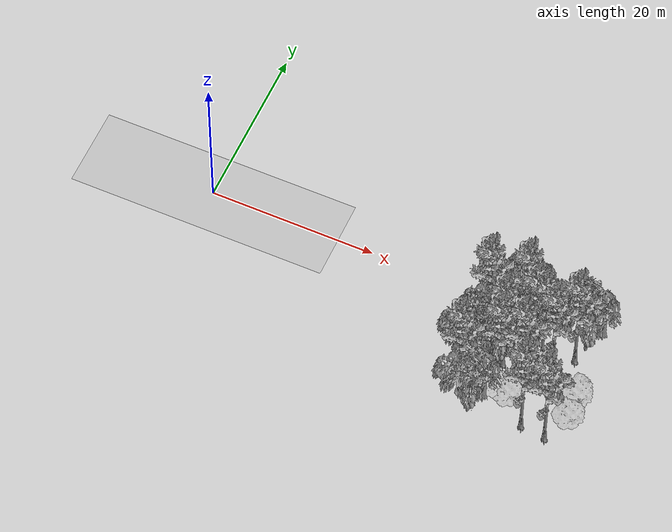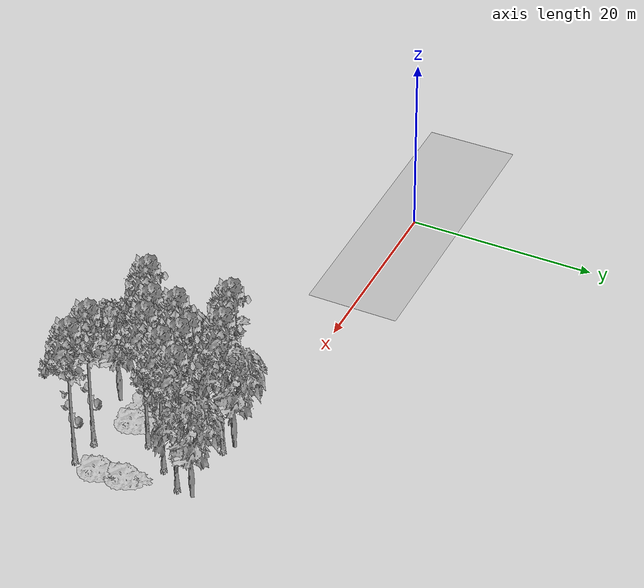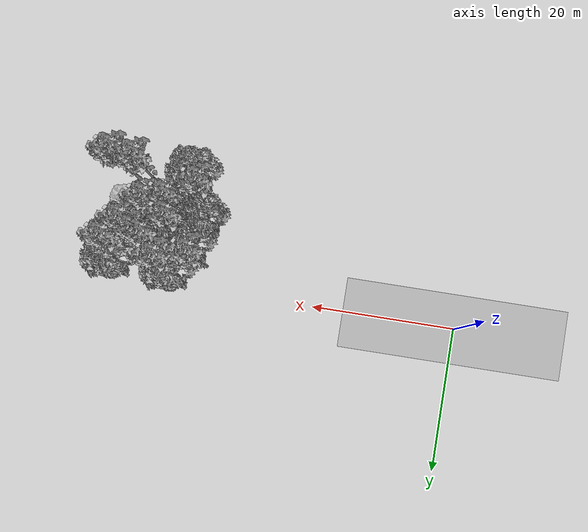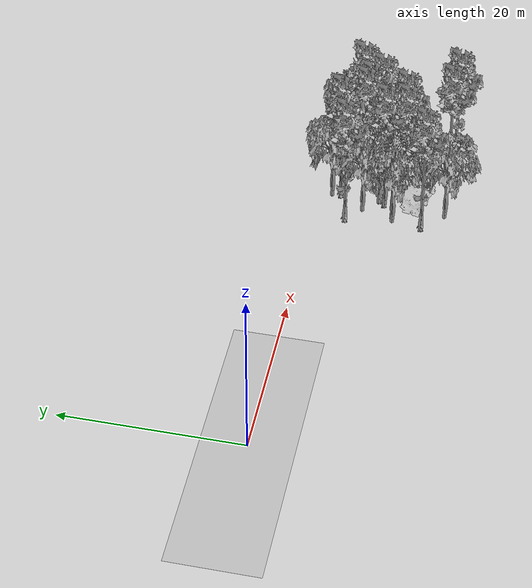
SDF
<sdf version="1.7">
 <world name="default">
  <model name="ground_plane">
   <static>1</static>
   <link name="link">
    <collision name="collision">
     <pose>-50 0 0 0 -0 0</pose>
     <geometry><plane><normal>0 0 1</normal><size>100 100</size></plane></geometry>
     <surface><contact><ode><min_depth>0.01</min_depth><max_vel>0</max_vel></ode></contact></surface>
    </collision>
    <visual name="grass">
     <cast_shadows>0</cast_shadows>
     <geometry>
      <mesh>
       <scale>0.5814285714285714 0.18142857142857144 0.1</scale>
       <uri>file://grass_plane/meshes/grass_plane.dae</uri>
      </mesh>
     </geometry>
    </visual>
   </link>
  </model>
  <model name="Tree 1">
   <static>1</static>
   <pose>39.66715383200335 -9.79743286991348 0 1.57079 -0 0</pose>
   <link name="link">
    <collision name="collision">
     <geometry><mesh><scale>3.5 5 3.5</scale><uri>model://tree_9/meshes/tree_9.obj</uri></mesh></geometry>
    </collision>
    <visual name="visual">
     <geometry><mesh><scale>3.5 5 3.5</scale><uri>model://tree_9/meshes/tree_9.obj</uri></mesh></geometry>
    </visual>
   </link>
  </model>
  <model name="Tree 4">
   <static>1</static>
   <pose>38.85485388677229 -6.85796119349353 0 1.57079 -0 0</pose>
   <link name="link">
    <collision name="collision">
     <geometry><mesh><scale>3.5 5 3.5</scale><uri>model://tree_2/meshes/tree_2.obj</uri></mesh></geometry>
    </collision>
    <visual name="visual">
     <geometry><mesh><scale>3.5 5 3.5</scale><uri>model://tree_2/meshes/tree_2.obj</uri></mesh></geometry>
    </visual>
   </link>
  </model>
  <model name="Tree 35">
   <static>1</static>
   <pose>38.48645120740305 -7.585648459738223 0 1.57079 -0 0</pose>
   <link name="link">
    <collision name="collision">
     <geometry><mesh><scale>3.5 5 3.5</scale><uri>model://tree_2/meshes/tree_2.obj</uri></mesh></geometry>
    </collision>
    <visual name="visual">
     <geometry><mesh><scale>3.5 5 3.5</scale><uri>model://tree_2/meshes/tree_2.obj</uri></mesh></geometry>
    </visual>
   </link>
  </model>
  <model name="Tree 44">
   <static>1</static>
   <pose>42.972990026830956 -5.106861504638861 0 1.57079 -0 0</pose>
   <link name="link">
    <collision name="collision">
     <geometry><mesh><scale>3.5 5 3.5</scale><uri>model://tree_9/meshes/tree_9.obj</uri></mesh></geometry>
    </collision>
    <visual name="visual">
     <geometry><mesh><scale>3.5 5 3.5</scale><uri>model://tree_9/meshes/tree_9.obj</uri></mesh></geometry>
    </visual>
   </link>
  </model>
  <model name="Tree 56">
   <static>1</static>
   <pose>36.0126616180943 -8.849073797612842 0 1.57079 -0 0</pose>
   <link name="link">
    <collision name="collision">
     <geometry><mesh><scale>3.5 5 3.5</scale><uri>model://tree_2/meshes/tree_2.obj</uri></mesh></geometry>
    </collision>
    <visual name="visual">
     <geometry><mesh><scale>3.5 5 3.5</scale><uri>model://tree_2/meshes/tree_2.obj</uri></mesh></geometry>
    </visual>
   </link>
  </model>
  <model name="Tree 75">
   <static>1</static>
   <pose>47.192818895071866 -14.372048634188662 0 1.57079 -0 0</pose>
   <link name="link">
    <collision name="collision">
     <geometry><mesh><scale>3.5 5 3.5</scale><uri>model://tree_9/meshes/tree_9.obj</uri></mesh></geometry>
    </collision>
    <visual name="visual">
     <geometry><mesh><scale>3.5 5 3.5</scale><uri>model://tree_9/meshes/tree_9.obj</uri></mesh></geometry>
    </visual>
   </link>
  </model>
  <model name="Tree 99">
   <static>1</static>
   <pose>41.24590839051818 -10.880660917098703 0 1.57079 -0 0</pose>
   <link name="link">
    <collision name="collision">
     <geometry><mesh><scale>4 2.5 4</scale><uri>model://tree_1/meshes/tree_1.obj</uri></mesh></geometry>
    </collision>
    <visual name="visual">
     <geometry><mesh><scale>4 2.5 4</scale><uri>model://tree_1/meshes/tree_1.obj</uri></mesh></geometry>
    </visual>
   </link>
  </model>
  <model name="Tree 104">
   <static>1</static>
   <pose>39.238473408387705 -7.4104846085706555 0 1.57079 -0 0</pose>
   <link name="link">
    <collision name="collision">
     <geometry><mesh><scale>3.5 5 3.5</scale><uri>model://tree_9/meshes/tree_9.obj</uri></mesh></geometry>
    </collision>
    <visual name="visual">
     <geometry><mesh><scale>3.5 5 3.5</scale><uri>model://tree_9/meshes/tree_9.obj</uri></mesh></geometry>
    </visual>
   </link>
  </model>
  <model name="Tree 115">
   <static>1</static>
   <pose>46.85511829235739 -1.874330395085467 0 1.57079 -0 0</pose>
   <link name="link">
    <collision name="collision">
     <geometry><mesh><scale>3.5 5 3.5</scale><uri>model://tree_2/meshes/tree_2.obj</uri></mesh></geometry>
    </collision>
    <visual name="visual">
     <geometry><mesh><scale>3.5 5 3.5</scale><uri>model://tree_2/meshes/tree_2.obj</uri></mesh></geometry>
    </visual>
   </link>
  </model>
  <model name="Tree 154">
   <static>1</static>
   <pose>37.20461155868452 -5.222956669100508 0 1.57079 -0 0</pose>
   <link name="link">
    <collision name="collision">
     <geometry><mesh><scale>3.5 5 3.5</scale><uri>model://tree_2/meshes/tree_2.obj</uri></mesh></geometry>
    </collision>
    <visual name="visual">
     <geometry><mesh><scale>3.5 5 3.5</scale><uri>model://tree_2/meshes/tree_2.obj</uri></mesh></geometry>
    </visual>
   </link>
  </model>
  <model name="Tree 166">
   <static>1</static>
   <pose>38.7679935107127 -11.118871377170267 0 1.57079 -0 0</pose>
   <link name="link">
    <collision name="collision">
     <geometry><mesh><scale>3 2 3</scale><uri>model://tree_3/meshes/tree_3.obj</uri></mesh></geometry>
    </collision>
    <visual name="visual">
     <geometry><mesh><scale>3 2 3</scale><uri>model://tree_3/meshes/tree_3.obj</uri></mesh></geometry>
    </visual>
   </link>
  </model>
  <model name="Tree 195">
   <static>1</static>
   <pose>48.49604986614102 -10.812340596375655 0 1.57079 -0 0</pose>
   <link name="link">
    <collision name="collision">
     <geometry><mesh><scale>4 2.5 4</scale><uri>model://tree_1/meshes/tree_1.obj</uri></mesh></geometry>
    </collision>
    <visual name="visual">
     <geometry><mesh><scale>4 2.5 4</scale><uri>model://tree_1/meshes/tree_1.obj</uri></mesh></geometry>
    </visual>
   </link>
  </model>
  <model name="Tree 204">
   <static>1</static>
   <pose>39.904190415574874 -2.2615453857950136 0 1.57079 -0 0</pose>
   <link name="link">
    <collision name="collision">
     <geometry><mesh><scale>3.5 5 3.5</scale><uri>model://tree_9/meshes/tree_9.obj</uri></mesh></geometry>
    </collision>
    <visual name="visual">
     <geometry><mesh><scale>3.5 5 3.5</scale><uri>model://tree_9/meshes/tree_9.obj</uri></mesh></geometry>
    </visual>
   </link>
  </model>
  <model name="Tree 216">
   <static>1</static>
   <pose>36.119339881190314 -12.12269904569966 0 1.57079 -0 0</pose>
   <link name="link">
    <collision name="collision">
     <geometry><mesh><scale>3.5 5 3.5</scale><uri>model://tree_9/meshes/tree_9.obj</uri></mesh></geometry>
    </collision>
    <visual name="visual">
     <geometry><mesh><scale>3.5 5 3.5</scale><uri>model://tree_9/meshes/tree_9.obj</uri></mesh></geometry>
    </visual>
   </link>
  </model>
  <model name="Tree 218">
   <static>1</static>
   <pose>39.09603395638351 -1.4036972310397555 0 1.57079 -0 0</pose>
   <link name="link">
    <collision name="collision">
     <geometry><mesh><scale>3.5 5 3.5</scale><uri>model://tree_2/meshes/tree_2.obj</uri></mesh></geometry>
    </collision>
    <visual name="visual">
     <geometry><mesh><scale>3.5 5 3.5</scale><uri>model://tree_2/meshes/tree_2.obj</uri></mesh></geometry>
    </visual>
   </link>
  </model>
  <model name="Tree 219">
   <static>1</static>
   <pose>40.41515550403456 -6.501687278149582 0 1.57079 -0 0</pose>
   <link name="link">
    <collision name="collision">
     <geometry><mesh><scale>3.5 5 3.5</scale><uri>model://tree_2/meshes/tree_2.obj</uri></mesh></geometry>
    </collision>
    <visual name="visual">
     <geometry><mesh><scale>3.5 5 3.5</scale><uri>model://tree_2/meshes/tree_2.obj</uri></mesh></geometry>
    </visual>
   </link>
  </model>
  <model name="Tree 220">
   <static>1</static>
   <pose>36.509528705078424 -8.724008901022273 0 1.57079 -0 0</pose>
   <link name="link">
    <collision name="collision">
     <geometry><mesh><scale>3.5 5 3.5</scale><uri>model://tree_2/meshes/tree_2.obj</uri></mesh></geometry>
    </collision>
    <visual name="visual">
     <geometry><mesh><scale>3.5 5 3.5</scale><uri>model://tree_2/meshes/tree_2.obj</uri></mesh></geometry>
    </visual>
   </link>
  </model>
  <model name="Tree 237">
   <static>1</static>
   <pose>46.4239504610746 -3.741441725785764 0 1.57079 -0 0</pose>
   <link name="link">
    <collision name="collision">
     <geometry><mesh><scale>3.5 5 3.5</scale><uri>model://tree_9/meshes/tree_9.obj</uri></mesh></geometry>
    </collision>
    <visual name="visual">
     <geometry><mesh><scale>3.5 5 3.5</scale><uri>model://tree_9/meshes/tree_9.obj</uri></mesh></geometry>
    </visual>
   </link>
  </model>
  <model name="Tree 243">
   <static>1</static>
   <pose>42.213431985177905 -9.15389241375545 0 1.57079 -0 0</pose>
   <link name="link">
    <collision name="collision">
     <geometry><mesh><scale>3.5 5 3.5</scale><uri>model://tree_9/meshes/tree_9.obj</uri></mesh></geometry>
    </collision>
    <visual name="visual">
     <geometry><mesh><scale>3.5 5 3.5</scale><uri>model://tree_9/meshes/tree_9.obj</uri></mesh></geometry>
    </visual>
   </link>
  </model>
  <model name="Tree 256">
   <static>1</static>
   <pose>37.92367160470823 -14.559753515090682 0 1.57079 -0 0</pose>
   <link name="link">
    <collision name="collision">
     <geometry><mesh><scale>3.5 5 3.5</scale><uri>model://tree_2/meshes/tree_2.obj</uri></mesh></geometry>
    </collision>
    <visual name="visual">
     <geometry><mesh><scale>3.5 5 3.5</scale><uri>model://tree_2/meshes/tree_2.obj</uri></mesh></geometry>
    </visual>
   </link>
  </model>
  <model name="Tree 261">
   <static>1</static>
   <pose>44.62906871884017 -6.1417490014983205 0 1.57079 -0 0</pose>
   <link name="link">
    <collision name="collision">
     <geometry><mesh><scale>3.5 5 3.5</scale><uri>model://tree_9/meshes/tree_9.obj</uri></mesh></geometry>
    </collision>
    <visual name="visual">
     <geometry><mesh><scale>3.5 5 3.5</scale><uri>model://tree_9/meshes/tree_9.obj</uri></mesh></geometry>
    </visual>
   </link>
  </model>
  <model name="Tree 266">
   <static>1</static>
   <pose>35.867079285437015 -3.4412859110432414 0 1.57079 -0 0</pose>
   <link name="link">
    <collision name="collision">
     <geometry><mesh><scale>3.5 5 3.5</scale><uri>model://tree_9/meshes/tree_9.obj</uri></mesh></geometry>
    </collision>
    <visual name="visual">
     <geometry><mesh><scale>3.5 5 3.5</scale><uri>model://tree_9/meshes/tree_9.obj</uri></mesh></geometry>
    </visual>
   </link>
  </model>
  <model name="Tree 268">
   <static>1</static>
   <pose>44.2342088449832 -14.010136385678383 0 1.57079 -0 0</pose>
   <link name="link">
    <collision name="collision">
     <geometry><mesh><scale>3.5 5 3.5</scale><uri>model://tree_9/meshes/tree_9.obj</uri></mesh></geometry>
    </collision>
    <visual name="visual">
     <geometry><mesh><scale>3.5 5 3.5</scale><uri>model://tree_9/meshes/tree_9.obj</uri></mesh></geometry>
    </visual>
   </link>
  </model>
  <model name="Tree 281">
   <static>1</static>
   <pose>48.3196379595683 -8.02432737470083 0 1.57079 -0 0</pose>
   <link name="link">
    <collision name="collision">
     <geometry><mesh><scale>4 2.5 4</scale><uri>model://tree_1/meshes/tree_1.obj</uri></mesh></geometry>
    </collision>
    <visual name="visual">
     <geometry><mesh><scale>4 2.5 4</scale><uri>model://tree_1/meshes/tree_1.obj</uri></mesh></geometry>
    </visual>
   </link>
  </model>
  <model name="Tree 294">
   <static>1</static>
   <pose>41.89196431905502 -4.797853023109953 0 1.57079 -0 0</pose>
   <link name="link">
    <collision name="collision">
     <geometry><mesh><scale>3.5 5 3.5</scale><uri>model://tree_9/meshes/tree_9.obj</uri></mesh></geometry>
    </collision>
    <visual name="visual">
     <geometry><mesh><scale>3.5 5 3.5</scale><uri>model://tree_9/meshes/tree_9.obj</uri></mesh></geometry>
    </visual>
   </link>
  </model>
 </world>
</sdf>
